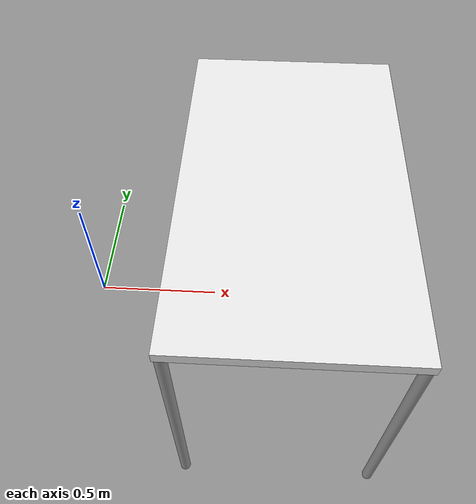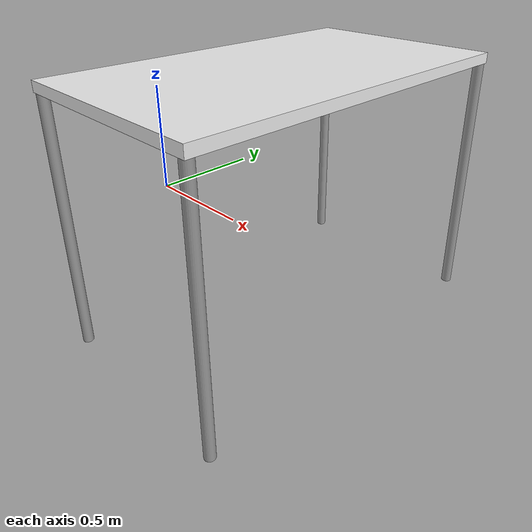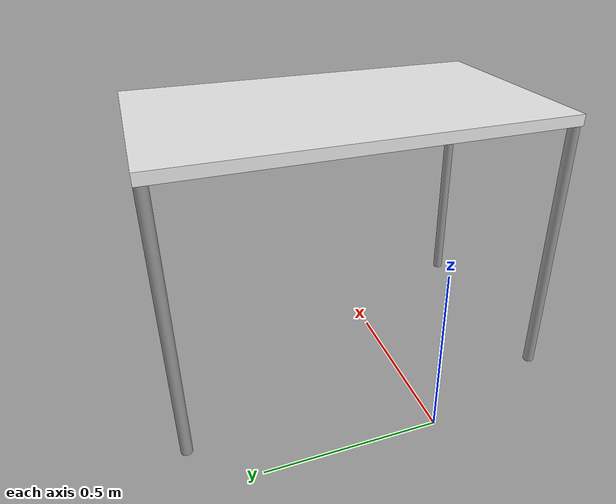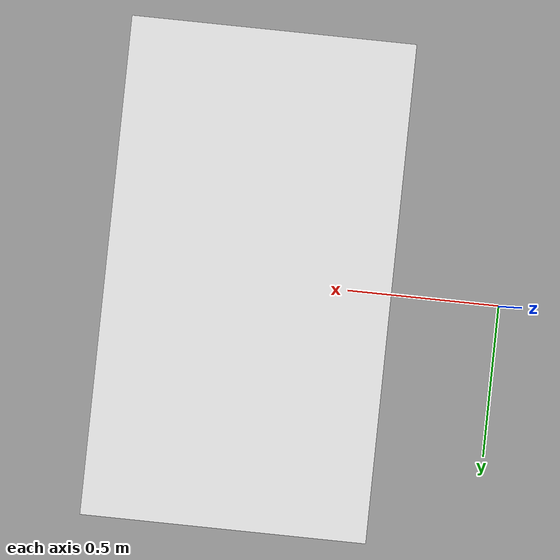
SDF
<sdf version="1.6">
 <world name="default">
  <include><uri>model://sun</uri></include>
  <plugin name="stepping_plugin" filename="libstepping_plugin.so"/>
  <plugin name="collision_map_plugin" filename="libcollision_map_plugin.so"/>
  <physics name="ode" type="ode">
   <ode><constraints><contact_max_correcting_vel>0</contact_max_correcting_vel></constraints></ode>
  </physics>
  <include><uri>model://victor_table</uri></include>
 </world>
</sdf>

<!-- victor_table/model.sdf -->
<sdf version="1.6">
    <model name='table'>
        <static>1</static>
        <pose frame=''>0.8 0 -0.3 0 0 -1.5708</pose>
        <link name='link'>
            <collision name='surface'>
                <pose frame=''>0 0 1 0 -0 0</pose>
                <geometry>
                    <box>
                        <size>1.5 0.8 0.03</size>
                    </box>
                </geometry>
                <surface>
                    <friction>
                        <ode>
                            <mu>0.6</mu>
                            <mu2>0.6</mu2>
                        </ode>
                    </friction>
                </surface>
            </collision>
            <visual name='visual1'>
                <pose frame=''>0 0 1 0 -0 0</pose>
                <geometry>
                    <box>
                        <size>1.4 0.8 0.04</size>
                    </box>
                </geometry>
                <material>
                    <script>
                        <uri>file://media/materials/scripts/gazebo.material</uri>
                        <name>Gazebo/White</name>
                    </script>
                </material>
            </visual>
            <collision name='front_left_leg'>
                <pose frame=''>0.68 0.38 0.5 0 -0 0</pose>
                <geometry>
                    <cylinder>
                        <radius>0.02</radius>
                        <length>1</length>
                    </cylinder>
                </geometry>
            </collision>
            <visual name='front_left_leg'>
                <pose frame=''>0.68 0.38 0.5 0 -0 0</pose>
                <geometry>
                    <cylinder>
                        <radius>0.02</radius>
                        <length>1</length>
                    </cylinder>
                </geometry>
                <material>
                    <script>
                        <uri>file://media/materials/scripts/gazebo.material</uri>
                        <name>Gazebo/Grey</name>
                    </script>
                </material>
            </visual>
            <collision name='front_right_leg'>
                <pose frame=''>0.68 -0.38 0.5 0 -0 0</pose>
                <geometry>
                    <cylinder>
                        <radius>0.02</radius>
                        <length>1</length>
                    </cylinder>
                </geometry>
            </collision>
            <visual name='front_right_leg'>
                <pose frame=''>0.68 -0.38 0.5 0 -0 0</pose>
                <geometry>
                    <cylinder>
                        <radius>0.02</radius>
                        <length>1</length>
                    </cylinder>
                </geometry>
                <material>
                    <script>
                        <uri>file://media/materials/scripts/gazebo.material</uri>
                        <name>Gazebo/Grey</name>
                    </script>
                </material>
            </visual>
            <collision name='back_right_leg'>
                <pose frame=''>-0.68 -0.38 0.5 0 -0 0</pose>
                <geometry>
                    <cylinder>
                        <radius>0.02</radius>
                        <length>1</length>
                    </cylinder>
                </geometry>
            </collision>
            <visual name='back_right_leg'>
                <pose frame=''>-0.68 -0.38 0.5 0 -0 0</pose>
                <geometry>
                    <cylinder>
                        <radius>0.02</radius>
                        <length>1</length>
                    </cylinder>
                </geometry>
                <material>
                    <script>
                        <uri>file://media/materials/scripts/gazebo.material</uri>
                        <name>Gazebo/Grey</name>
                    </script>
                </material>
            </visual>
            <collision name='back_left_leg'>
                <pose frame=''>-0.68 0.38 0.5 0 -0 0</pose>
                <geometry>
                    <cylinder>
                        <radius>0.02</radius>
                        <length>1</length>
                    </cylinder>
                </geometry>
            </collision>
            <visual name='back_left_leg'>
                <pose frame=''>-0.68 0.38 0.5 0 -0 0</pose>
                <geometry>
                    <cylinder>
                        <radius>0.02</radius>
                        <length>1</length>
                    </cylinder>
                </geometry>
                <material>
                    <script>
                        <uri>file://media/materials/scripts/gazebo.material</uri>
                        <name>Gazebo/Grey</name>
                    </script>
                </material>
            </visual>
            <self_collide>0</self_collide>
            <inertial>
                <inertia>
                    <ixx>1</ixx>
                    <ixy>0</ixy>
                    <ixz>0</ixz>
                    <iyy>1</iyy>
                    <iyz>0</iyz>
                    <izz>1</izz>
                </inertia>
                <mass>1</mass>
            </inertial>
        </link>
    </model>
</sdf>
